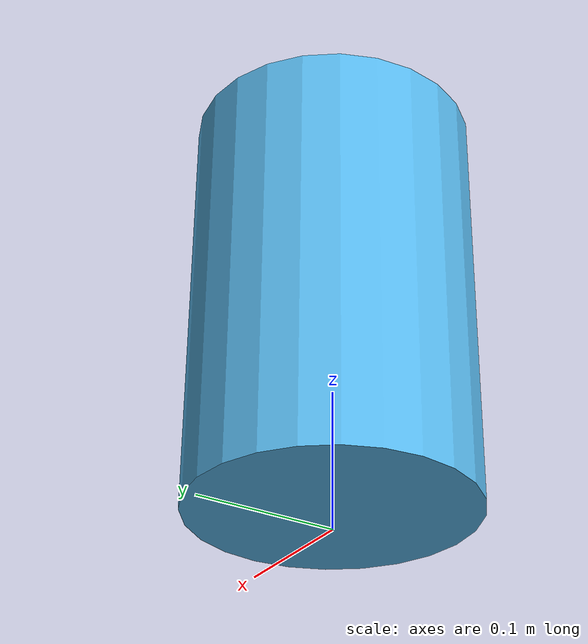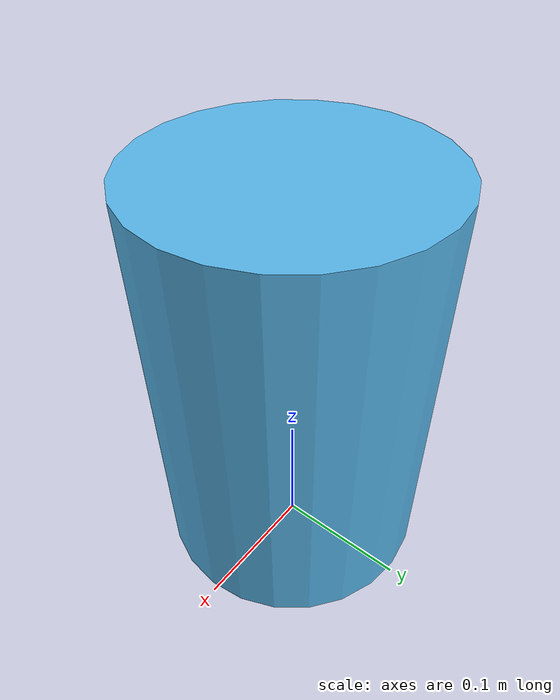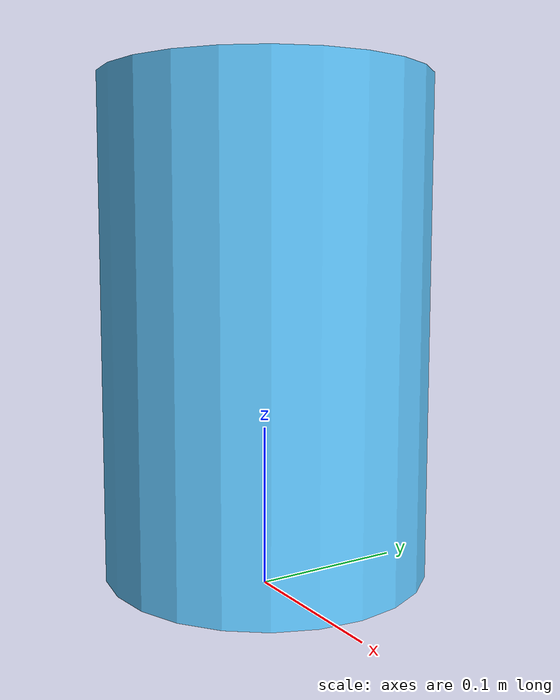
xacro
<?xml version="1.0"?>
<robot xmlns:xacro="http://www.ros.org/wiki/xacro" name="OS32C-BP-DM-4M">

    <xacro:property name="name" value="OS32C-BP-DM-4M"/>

    <link name="world"/>

    <link name="${name}">
      <inertial>
        <mass value="1.3"/>
        <origin xyz="0 0 0"/>
        <inertia ixx="0.001567" ixy="0" ixz="0" iyy="0.001594" iyz="0" izz="0.001532"/>
      </inertial>
      <visual>
        <origin xyz="0 0 -0.0377"/>
        <geometry>
          <cylinder radius="0.1" length="0.3"/>
        </geometry>
      </visual>
    </link>

    <joint name="${name}_omron_joint" type="fixed">
      <origin xyz="0 0 0.2" rpy="0 0 0"/>
      <parent link="world"/>
      <child link="${name}"/>
    </joint>

    <gazebo reference="${name}">
        <sensor type="gpu_ray" name="${name}_lidar_link">
          <pose>0 0 0 0 0 0</pose>
          <topic>${name}_lidar_data</topic>
          <visualize>false</visualize>
          <update_rate>10</update_rate>
          <ray>
            <scan>
              <horizontal>
                <samples>675</samples> <!-- scan angle 270 degrees and angular resolution is 0.4. Divide 270 by 0.4 for the number of samples-->
                <resolution>1</resolution>
                <min_angle>0</min_angle>
                <max_angle>4.71238898</max_angle>
              </horizontal>
            </scan>
            <range>
              <min>1.75</min>
              <max>15</max>
              <resolution>0.4</resolution>
            </range>
            <noise>
              <type>gaussian</type>
              <mean>0.0</mean>
              <stddev>0.02</stddev>
            </noise>
          </ray>
          <xacro:if value="true">
            <plugin filename="libignition-gazebo-sensors-system.so" name="ignition::gazebo::systems::Sensors">
              <render_engine>ogre2</render_engine>
            </plugin>
          </xacro:if>
        </sensor>
    </gazebo>
</robot>
